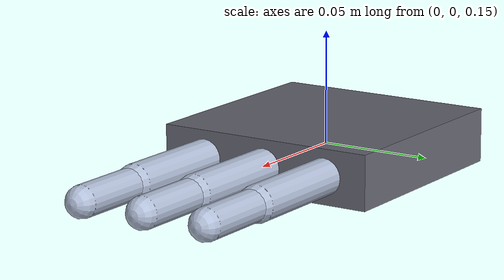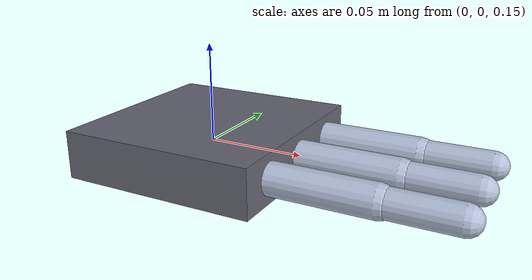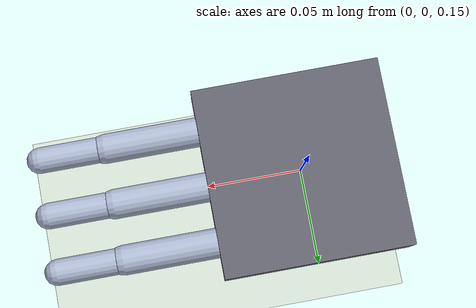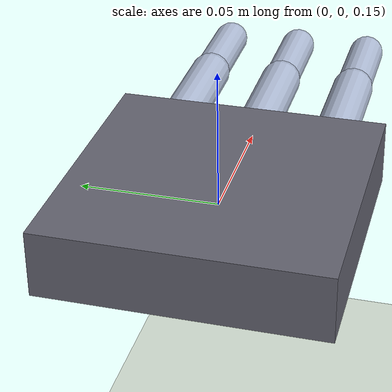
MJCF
<mujoco model="hand_final">
  <compiler angle="degree" autolimits="true" inertiafromgeom="true"/>

  <option gravity="0 0 -9.81" timestep="0.002"/>

  <default>
    <joint type="hinge" axis="0 1 0" damping="0.1"/>
    <geom  type="capsule" rgba="0.7 0.75 0.85 1"/>
    <position kp="100" forcerange="-1.39 1.39"/>
  </default>

  <worldbody>
    <light pos="0.2 0 0.5" dir="0 0 -1"/>
    <geom name="floor" type="plane" size="0.5 0.5 0.05" rgba="0.85 0.9 0.85 1"/>

    <!-- palm: 100x30x24 mm, fixed in world frame.
         3 fingers extend from +x edge, spaced 30mm apart along y. -->
    <body name="palm" pos="0 0 0.15">
      <geom name="palm_geom" type="box" size="0.05 0.05 0.012"
            rgba="0.4 0.4 0.45 1" mass="0.12"/>

      <!-- finger_0: y = +30mm -->
      <body name="proximal_0" pos="0.05 0.030 0">
        <joint name="mcp_0" range="-10 90"/>
        <geom name="prox_0_geom" fromto="0 0 0 0.05 0 0" size="0.008" mass="0.04"/>
        <body name="distal_0" pos="0.05 0 0">
          <joint name="pip_0" range="0 110"/>
          <geom name="dist_0_geom" fromto="0 0 0 0.035 0 0" size="0.007" mass="0.04"/>
        </body>
      </body>

      <!-- finger_1: y = 0 (center) -->
      <body name="proximal_1" pos="0.05 0 0">
        <joint name="mcp_1" range="-10 90"/>
        <geom name="prox_1_geom" fromto="0 0 0 0.05 0 0" size="0.008" mass="0.04"/>
        <body name="distal_1" pos="0.05 0 0">
          <joint name="pip_1" range="0 110"/>
          <geom name="dist_1_geom" fromto="0 0 0 0.035 0 0" size="0.007" mass="0.04"/>
        </body>
      </body>

      <!-- finger_2: y = -30mm -->
      <body name="proximal_2" pos="0.05 -0.030 0">
        <joint name="mcp_2" range="-10 90"/>
        <geom name="prox_2_geom" fromto="0 0 0 0.05 0 0" size="0.008" mass="0.04"/>
        <body name="distal_2" pos="0.05 0 0">
          <joint name="pip_2" range="0 110"/>
          <geom name="dist_2_geom" fromto="0 0 0 0.035 0 0" size="0.007" mass="0.04"/>
        </body>
      </body>
    </body>
  </worldbody>

  <actuator>
    <position name="mcp_0_act" joint="mcp_0" ctrlrange="-0.175 1.571"/>
    <position name="pip_0_act" joint="pip_0" ctrlrange="0 1.920"/>
    <position name="mcp_1_act" joint="mcp_1" ctrlrange="-0.175 1.571"/>
    <position name="pip_1_act" joint="pip_1" ctrlrange="0 1.920"/>
    <position name="mcp_2_act" joint="mcp_2" ctrlrange="-0.175 1.571"/>
    <position name="pip_2_act" joint="pip_2" ctrlrange="0 1.920"/>
  </actuator>
</mujoco>
